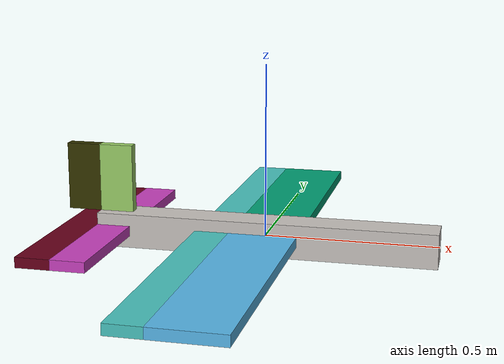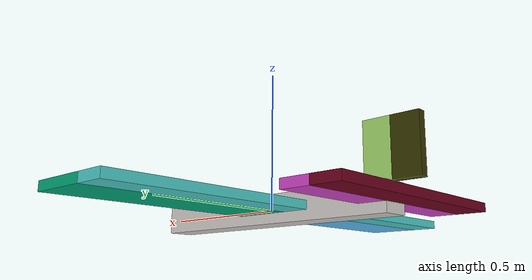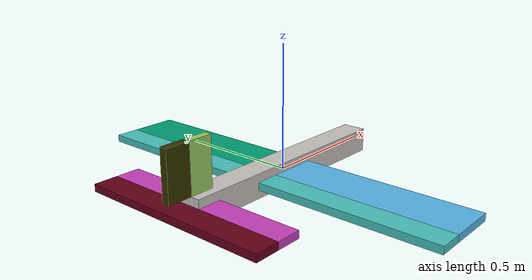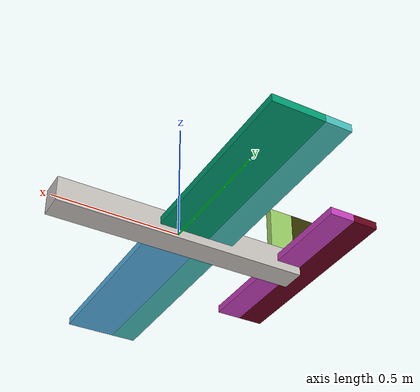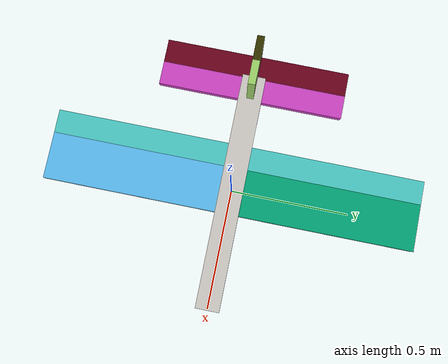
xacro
<?xml version="1.0" encoding="utf-8" ?>
<robot name="ucak" xmlns:xacro="http://ros.org/wiki/xacro">

    <link name="ucak_govdesi">
        <inertial>
            <origin xyz="0 0 0" rpy="0 0 0" />
            <mass value="1.46" />
            <inertia ixx="${0.83*0.1*0.1}" ixy="0.0" ixz="0.00" iyy="${0.83*1*0.1}" iyz="0.0" izz="${0.83*1*0.1}" />
        </inertial>
	<visual>
            <origin xyz="0 0 0" rpy="0 0 0" />
            <geometry>
                <box size="1 0.1 0.1"/>
            </geometry>
            <material name="">
                <color rgba="0.78 0.76 0.74 1" />
            </material>
        </visual>
	<collision>
            <origin xyz="0 0 0" rpy="0 0 0" />
            <geometry>
                <box size="1 0.1 0.1"/>
            </geometry>
        </collision>
    </link>

    <xacro:macro name="kanat" params="lr translateY flipZ">
        <link name="${lr}_kanat">
            <visual>
                <origin xyz="0 0 0" rpy="0 0 0" />
                <geometry>
                    <box size="0.75 0.2 0.03"/>
                </geometry>
            </visual>
            <collision>
                <origin xyz="0 0 0" rpy="0 0 0" />
                <geometry>
                    <box size="0.75 0.2 0.03"/>
                </geometry>
            </collision>
            <inertial>
                <origin xyz="0 0 0" rpy="0 0 0" />
                <mass value="0.10" />
                <inertia ixx="0" ixy="0" ixz="0" iyy="0" iyz="0" izz="0" />
            </inertial>
        </link>
        <joint name="${lr}_kanat_eklemi" type="fixed">
            <origin xyz="0.0 ${translateY} 0.0" rpy="0.0 0.0 ${flipZ}"/>
            <parent link="ucak_govdesi"/>
            <child link="${lr}_kanat"/>
        </joint>
    </xacro:macro>

    <xacro:macro name="eleron" params="lr translateY">
        <link name="${lr}_eleron">
            <visual>
                <origin xyz="0 ${translateY} 0" rpy="0 0 0" />
                <geometry>
                    <box size="0.75 0.1 0.03" />
                </geometry>
                <material name="">
                <color rgba="0.28 0.76 0.74 1" />
            </material>
            </visual>
            <collision>
                <origin xyz="0 ${translateY} 0" rpy="0 0 0" />
                <geometry>
                    <box size="0.75 0.1 0.03" />
                </geometry>
            </collision>
            <inertial>
                <origin xyz="0 0 0" rpy="0 0 0" />
                <mass value="0.10" />
                <inertia ixx="0" ixy="0" ixz="0" iyy="0" iyz="0" izz="0" />
            </inertial>
        </link>
        <xacro:if value="${lr == 'sag'}">
            <joint name="${lr}_eleron_eklemi" type="revolute">
                <parent link="${lr}_kanat"/>
                <child link="${lr}_eleron"/>
                <axis xyz="1 0 0" />
                <limit lower="-3.14" upper="3.14" effort="17000" velocity="45" />
                <origin xyz="0 0.10 0" rpy="0 0 0" />
            </joint>
        </xacro:if>

        <xacro:if value="${lr == 'sol'}">
            <joint name="${lr}_eleron_eklemi" type="revolute">
                <parent link="${lr}_kanat"/>
                <child link="${lr}_eleron"/>
                <axis xyz="1 0 0" />
                <limit lower="-3.14" upper="3.14" effort="17000" velocity="45" />
                <origin xyz="0 0.10 0" rpy="0 0 0" />
                <mimic joint="sag_eleron_eklemi" multiplier="-1" offset="0"/>
            </joint>
        </xacro:if>

    </xacro:macro>

    <kanat lr="sag" translateY="-0.42" flipZ="1.5707963267949"/>
    <kanat lr="sol" translateY="0.42" flipZ="1.5707963267949"/>
    <eleron lr="sag" translateY="0.05"/>
    <eleron lr="sol" translateY="0.05"/>

    <link name="yatay_dengeleyici">
	<inertial>
            <origin xyz="0 0 0" rpy="0 0 0" />
            <mass value="0.10" />
            <inertia ixx="0" ixy="0" ixz="0" iyy="0" iyz="0" izz="0" />
        </inertial>
	<visual>
            <origin xyz="0 0 0" rpy="0 0 0" />
            <geometry>
                <box size="0.8 0.1 0.03"/>
            </geometry>
            <material name="">
                <color rgba="0.78 0.25 0.74 1" />
            </material>
        </visual>
	<collision>
            <origin xyz="0 0 0" rpy="0 0 0" />
            <geometry>
                <box size="0.8 0.1 0.03"/>
            </geometry>
        </collision>
    </link>

    <joint name="yatay_dengeleyici_eklemi" type="fixed">
        <origin xyz="-0.45 0 0" rpy="0 0 1.5707963267949" />
        <parent link="ucak_govdesi" />
        <child link="yatay_dengeleyici" />
    </joint>

    <link name="elevator">
	<inertial>
            <origin xyz="0 0 0" rpy="0 0 0" />
            <mass value="0.10" />
            <inertia ixx="0" ixy="0" ixz="0" iyy="0" iyz="0" izz="0" />
        </inertial>
	<visual>
            <origin xyz="0 0.05 0" rpy="0 0 0" />
            <geometry>
                <box size="0.8 0.1 0.03"/>
            </geometry>
            <material name="">
                <color rgba="0.4 0.0 0.1 1" />
            </material>
        </visual>
	<collision>
            <origin xyz="0 0.05 0" rpy="0 0 0" />
            <geometry>
                <box size="0.8 0.1 0.03"/>
            </geometry>
        </collision>
    </link>

    <joint name="elevator_eklemi" type="revolute">
        <origin xyz="0 0.05 0" rpy="0 0 0" />
        <parent link="yatay_dengeleyici" />
        <child link="elevator" />
        <axis xyz="1 0 0" />
        <limit lower="-3.14" upper="3.14" effort="17000" velocity="45" />
    </joint>

    <link name="dikey_dengeleyici">
	<inertial>
            <origin xyz="0 0 0" rpy="0 0 0" />
            <mass value="0.10" />
            <inertia ixx="0" ixy="0" ixz="0" iyy="0" iyz="0" izz="0" />
        </inertial>
	<visual>
            <origin xyz="0 0 0" rpy="0 0 0" />
            <geometry>
                <box size="0.1 0.2 0.03"/>
            </geometry>
            <material name="">
                <color rgba="0.6 0.8 0.4 1" />
            </material>
        </visual>
	<collision>
            <origin xyz="0 0 0" rpy="0 0 0" />
            <geometry>
                <box size="0.1 0.2 0.03"/>
            </geometry>
        </collision>
    </link>

    <joint name="dikey_dengeleyici_eklemi" type="fixed">
        <origin xyz="-0.45 0 0.15" rpy="1.5707963267949 0 0" />
        <parent link="ucak_govdesi" />
        <child link="dikey_dengeleyici" />
    </joint>

    <link name="dumen">
	<inertial>
            <origin xyz="0 0 0" rpy="0 0 0" />
            <mass value="0.10" />
            <inertia ixx="0" ixy="0" ixz="0" iyy="0" iyz="0" izz="0" />
        </inertial>
	<visual>
            <origin xyz="-0.05 0 0" rpy="0 0 0" />
            <geometry>
                <box size="0.1 0.2 0.03"/>
            </geometry>
            <material name="">
                <color rgba="0.2 0.2 0.0 1" />
            </material>
        </visual>
	<collision>
            <origin xyz="-0.05 0 0" rpy="0 0 0" />
            <geometry>
                <box size="0.1 0.2 0.03"/>
            </geometry>
        </collision>
    </link>

    <joint name="dumen_eklemi" type="revolute">
        <origin xyz="-0.05 0 0" rpy="0 0 0" />
        <parent link="dikey_dengeleyici" />
        <child link="dumen" />
        <axis xyz="0 1 0" />
        <limit lower="-3.14" upper="3.14" effort="17000" velocity="45" />
    </joint>

</robot>
